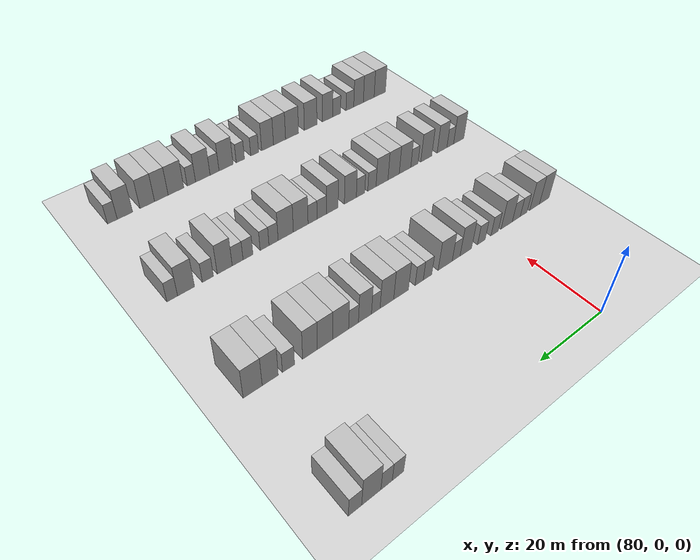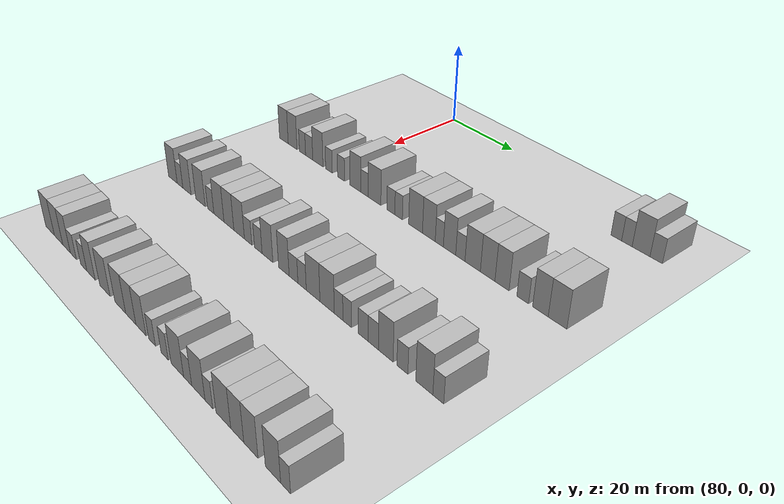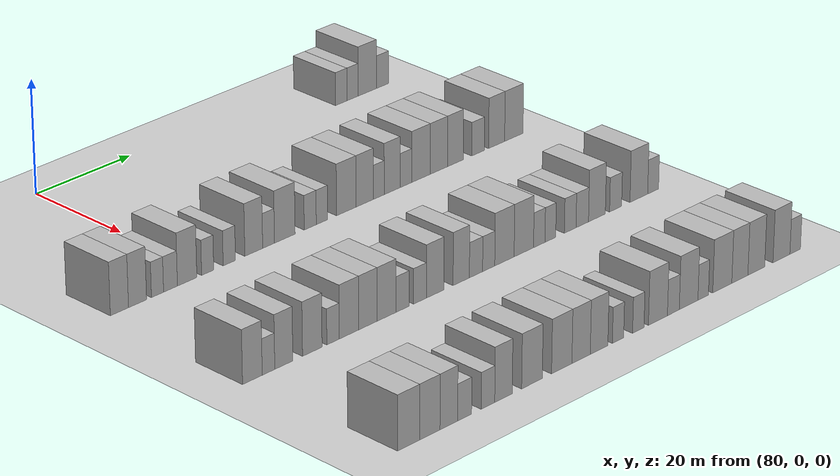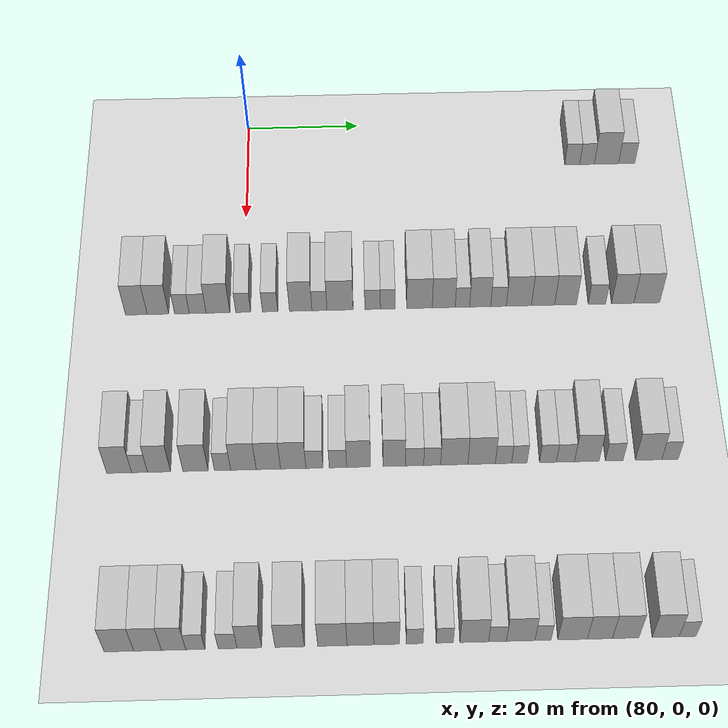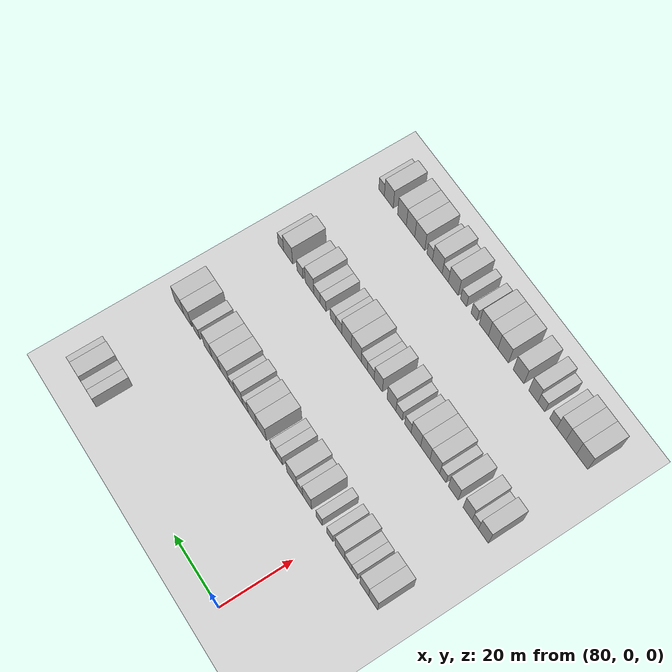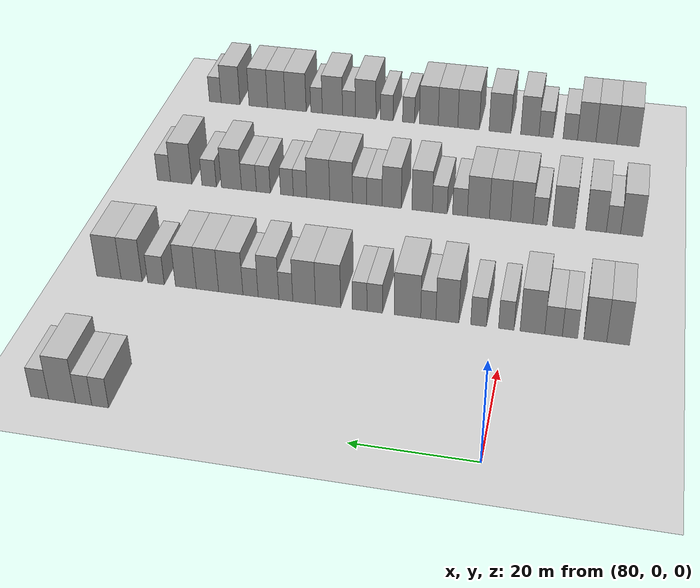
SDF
<sdf version="1.6">
 <world name="default">
  <include>
   <name>ground_plane_2</name>
   <uri>model://HANNAS_ground_plane</uri>
   <pose>100 0 0  0 0 0</pose>
  </include>
  <model name="building_590">
   <static>1</static>
   <pose>85.0000 58.6943 0 0.000000 0.000000 0.000000</pose>
   <link name="link">
    <pose>0 0 3.00 0 0 0</pose>
    <collision name="collision"><geometry><box><size>10.0000 2.7218 6.0000</size></box></geometry></collision>
    <visual name="visual">
     <cast_shadows>0</cast_shadows>
     <geometry><box><size>10.0000 2.7218 6.0000</size></box></geometry>
     <material>
      <script>
       <uri>model://HANNAS_wall/materials/scripts</uri>
       <uri>model://HANNAS_wall/materials/textures</uri>
       <name>vrc/HANNAS_wall</name>
      </script>
     </material>
    </visual>
   </link>
  </model>
  <model name="building_591">
   <static>1</static>
   <pose>85.0000 61.3782 0 0.000000 0.000000 0.000000</pose>
   <link name="link">
    <pose>0 0 3.00 0 0 0</pose>
    <collision name="collision"><geometry><box><size>10.0000 2.6460 6.0000</size></box></geometry></collision>
    <visual name="visual">
     <cast_shadows>0</cast_shadows>
     <geometry><box><size>10.0000 2.6460 6.0000</size></box></geometry>
     <material>
      <script>
       <uri>model://HANNAS_wall/materials/scripts</uri>
       <uri>model://HANNAS_wall/materials/textures</uri>
       <name>vrc/HANNAS_wall</name>
      </script>
     </material>
    </visual>
   </link>
  </model>
  <model name="building_592">
   <static>1</static>
   <pose>85.0000 64.8887 0 0.000000 0.000000 0.000000</pose>
   <link name="link">
    <pose>0 0 4.50 0 0 0</pose>
    <collision name="collision"><geometry><box><size>10.0000 4.3751 9.0000</size></box></geometry></collision>
    <visual name="visual">
     <cast_shadows>0</cast_shadows>
     <geometry><box><size>10.0000 4.3751 9.0000</size></box></geometry>
     <material>
      <script>
       <uri>model://HANNAS_wall/materials/scripts</uri>
       <uri>model://HANNAS_wall/materials/textures</uri>
       <name>vrc/HANNAS_wall</name>
      </script>
     </material>
    </visual>
   </link>
  </model>
  <model name="building_593">
   <static>1</static>
   <pose>85.0000 68.5587 0 0.000000 0.000000 0.000000</pose>
   <link name="link">
    <pose>0 0 3.00 0 0 0</pose>
    <collision name="collision"><geometry><box><size>10.0000 2.9649 6.0000</size></box></geometry></collision>
    <visual name="visual">
     <cast_shadows>0</cast_shadows>
     <geometry><box><size>10.0000 2.9649 6.0000</size></box></geometry>
     <material>
      <script>
       <uri>model://HANNAS_wall/materials/scripts</uri>
       <uri>model://HANNAS_wall/materials/textures</uri>
       <name>vrc/HANNAS_wall</name>
      </script>
     </material>
    </visual>
   </link>
  </model>
  <model name="building_803">
   <static>1</static>
   <pose>115.0000 -18.3068 0 0.000000 0.000000 0.000000</pose>
   <link name="link">
    <pose>0 0 4.50 0 0 0</pose>
    <collision name="collision"><geometry><box><size>10.0000 3.6775 9.0000</size></box></geometry></collision>
    <visual name="visual">
     <cast_shadows>0</cast_shadows>
     <geometry><box><size>10.0000 3.6775 9.0000</size></box></geometry>
     <material>
      <script>
       <uri>model://HANNAS_wall/materials/scripts</uri>
       <uri>model://HANNAS_wall/materials/textures</uri>
       <name>vrc/HANNAS_wall</name>
      </script>
     </material>
    </visual>
   </link>
  </model>
  <model name="building_804">
   <static>1</static>
   <pose>115.0000 -14.6297 0 0.000000 0.000000 0.000000</pose>
   <link name="link">
    <pose>0 0 4.50 0 0 0</pose>
    <collision name="collision"><geometry><box><size>10.0000 3.6768 9.0000</size></box></geometry></collision>
    <visual name="visual">
     <cast_shadows>0</cast_shadows>
     <geometry><box><size>10.0000 3.6768 9.0000</size></box></geometry>
     <material>
      <script>
       <uri>model://HANNAS_wall/materials/scripts</uri>
       <uri>model://HANNAS_wall/materials/textures</uri>
       <name>vrc/HANNAS_wall</name>
      </script>
     </material>
    </visual>
   </link>
  </model>
  <model name="building_805">
   <static>1</static>
   <pose>115.0000 -10.5433 0 0.000000 0.000000 0.000000</pose>
   <link name="link">
    <pose>0 0 3.00 0 0 0</pose>
    <collision name="collision"><geometry><box><size>10.0000 2.4961 6.0000</size></box></geometry></collision>
    <visual name="visual">
     <cast_shadows>0</cast_shadows>
     <geometry><box><size>10.0000 2.4961 6.0000</size></box></geometry>
     <material>
      <script>
       <uri>model://HANNAS_wall/materials/scripts</uri>
       <uri>model://HANNAS_wall/materials/textures</uri>
       <name>vrc/HANNAS_wall</name>
      </script>
     </material>
    </visual>
   </link>
  </model>
  <model name="building_806">
   <static>1</static>
   <pose>115.0000 -7.8630 0 0.000000 0.000000 0.000000</pose>
   <link name="link">
    <pose>0 0 3.00 0 0 0</pose>
    <collision name="collision"><geometry><box><size>10.0000 2.8645 6.0000</size></box></geometry></collision>
    <visual name="visual">
     <cast_shadows>0</cast_shadows>
     <geometry><box><size>10.0000 2.8645 6.0000</size></box></geometry>
     <material>
      <script>
       <uri>model://HANNAS_wall/materials/scripts</uri>
       <uri>model://HANNAS_wall/materials/textures</uri>
       <name>vrc/HANNAS_wall</name>
      </script>
     </material>
    </visual>
   </link>
  </model>
  <model name="building_807">
   <static>1</static>
   <pose>115.0000 -4.4111 0 0.000000 0.000000 0.000000</pose>
   <link name="link">
    <pose>0 0 4.50 0 0 0</pose>
    <collision name="collision"><geometry><box><size>10.0000 4.0393 9.0000</size></box></geometry></collision>
    <visual name="visual">
     <cast_shadows>0</cast_shadows>
     <geometry><box><size>10.0000 4.0393 9.0000</size></box></geometry>
     <material>
      <script>
       <uri>model://HANNAS_wall/materials/scripts</uri>
       <uri>model://HANNAS_wall/materials/textures</uri>
       <name>vrc/HANNAS_wall</name>
      </script>
     </material>
    </visual>
   </link>
  </model>
  <model name="building_808">
   <static>1</static>
   <pose>115.0000 -0.1194 0 0.000000 0.000000 0.000000</pose>
   <link name="link">
    <pose>0 0 3.00 0 0 0</pose>
    <collision name="collision"><geometry><box><size>10.0000 2.5441 6.0000</size></box></geometry></collision>
    <visual name="visual">
     <cast_shadows>0</cast_shadows>
     <geometry><box><size>10.0000 2.5441 6.0000</size></box></geometry>
     <material>
      <script>
       <uri>model://HANNAS_wall/materials/scripts</uri>
       <uri>model://HANNAS_wall/materials/textures</uri>
       <name>vrc/HANNAS_wall</name>
      </script>
     </material>
    </visual>
   </link>
  </model>
  <model name="building_809">
   <static>1</static>
   <pose>115.0000 4.4580 0 0.000000 0.000000 0.000000</pose>
   <link name="link">
    <pose>0 0 3.00 0 0 0</pose>
    <collision name="collision"><geometry><box><size>10.0000 2.6108 6.0000</size></box></geometry></collision>
    <visual name="visual">
     <cast_shadows>0</cast_shadows>
     <geometry><box><size>10.0000 2.6108 6.0000</size></box></geometry>
     <material>
      <script>
       <uri>model://HANNAS_wall/materials/scripts</uri>
       <uri>model://HANNAS_wall/materials/textures</uri>
       <name>vrc/HANNAS_wall</name>
      </script>
     </material>
    </visual>
   </link>
  </model>
  <model name="building_810">
   <static>1</static>
   <pose>115.0000 9.6715 0 0.000000 0.000000 0.000000</pose>
   <link name="link">
    <pose>0 0 4.50 0 0 0</pose>
    <collision name="collision"><geometry><box><size>10.0000 3.8161 9.0000</size></box></geometry></collision>
    <visual name="visual">
     <cast_shadows>0</cast_shadows>
     <geometry><box><size>10.0000 3.8161 9.0000</size></box></geometry>
     <material>
      <script>
       <uri>model://HANNAS_wall/materials/scripts</uri>
       <uri>model://HANNAS_wall/materials/textures</uri>
       <name>vrc/HANNAS_wall</name>
      </script>
     </material>
    </visual>
   </link>
  </model>
  <model name="building_811">
   <static>1</static>
   <pose>115.0000 12.8605 0 0.000000 0.000000 0.000000</pose>
   <link name="link">
    <pose>0 0 3.00 0 0 0</pose>
    <collision name="collision"><geometry><box><size>10.0000 2.5621 6.0000</size></box></geometry></collision>
    <visual name="visual">
     <cast_shadows>0</cast_shadows>
     <geometry><box><size>10.0000 2.5621 6.0000</size></box></geometry>
     <material>
      <script>
       <uri>model://HANNAS_wall/materials/scripts</uri>
       <uri>model://HANNAS_wall/materials/textures</uri>
       <name>vrc/HANNAS_wall</name>
      </script>
     </material>
    </visual>
   </link>
  </model>
  <model name="building_812">
   <static>1</static>
   <pose>115.0000 16.3796 0 0.000000 0.000000 0.000000</pose>
   <link name="link">
    <pose>0 0 4.50 0 0 0</pose>
    <collision name="collision"><geometry><box><size>10.0000 4.4760 9.0000</size></box></geometry></collision>
    <visual name="visual">
     <cast_shadows>0</cast_shadows>
     <geometry><box><size>10.0000 4.4760 9.0000</size></box></geometry>
     <material>
      <script>
       <uri>model://HANNAS_wall/materials/scripts</uri>
       <uri>model://HANNAS_wall/materials/textures</uri>
       <name>vrc/HANNAS_wall</name>
      </script>
     </material>
    </visual>
   </link>
  </model>
  <model name="building_813">
   <static>1</static>
   <pose>115.0000 21.9406 0 0.000000 0.000000 0.000000</pose>
   <link name="link">
    <pose>0 0 3.00 0 0 0</pose>
    <collision name="collision"><geometry><box><size>10.0000 2.6461 6.0000</size></box></geometry></collision>
    <visual name="visual">
     <cast_shadows>0</cast_shadows>
     <geometry><box><size>10.0000 2.6461 6.0000</size></box></geometry>
     <material>
      <script>
       <uri>model://HANNAS_wall/materials/scripts</uri>
       <uri>model://HANNAS_wall/materials/textures</uri>
       <name>vrc/HANNAS_wall</name>
      </script>
     </material>
    </visual>
   </link>
  </model>
  <model name="building_814">
   <static>1</static>
   <pose>115.0000 24.5147 0 0.000000 0.000000 0.000000</pose>
   <link name="link">
    <pose>0 0 3.00 0 0 0</pose>
    <collision name="collision"><geometry><box><size>10.0000 2.5020 6.0000</size></box></geometry></collision>
    <visual name="visual">
     <cast_shadows>0</cast_shadows>
     <geometry><box><size>10.0000 2.5020 6.0000</size></box></geometry>
     <material>
      <script>
       <uri>model://HANNAS_wall/materials/scripts</uri>
       <uri>model://HANNAS_wall/materials/textures</uri>
       <name>vrc/HANNAS_wall</name>
      </script>
     </material>
    </visual>
   </link>
  </model>
  <model name="building_815">
   <static>1</static>
   <pose>115.0000 29.9455 0 0.000000 0.000000 0.000000</pose>
   <link name="link">
    <pose>0 0 4.50 0 0 0</pose>
    <collision name="collision"><geometry><box><size>10.0000 4.3598 9.0000</size></box></geometry></collision>
    <visual name="visual">
     <cast_shadows>0</cast_shadows>
     <geometry><box><size>10.0000 4.3598 9.0000</size></box></geometry>
     <material>
      <script>
       <uri>model://HANNAS_wall/materials/scripts</uri>
       <uri>model://HANNAS_wall/materials/textures</uri>
       <name>vrc/HANNAS_wall</name>
      </script>
     </material>
    </visual>
   </link>
  </model>
  <model name="building_816">
   <static>1</static>
   <pose>115.0000 34.0891 0 0.000000 0.000000 0.000000</pose>
   <link name="link">
    <pose>0 0 4.50 0 0 0</pose>
    <collision name="collision"><geometry><box><size>10.0000 3.9274 9.0000</size></box></geometry></collision>
    <visual name="visual">
     <cast_shadows>0</cast_shadows>
     <geometry><box><size>10.0000 3.9274 9.0000</size></box></geometry>
     <material>
      <script>
       <uri>model://HANNAS_wall/materials/scripts</uri>
       <uri>model://HANNAS_wall/materials/textures</uri>
       <name>vrc/HANNAS_wall</name>
      </script>
     </material>
    </visual>
   </link>
  </model>
  <model name="building_817">
   <static>1</static>
   <pose>115.0000 37.2723 0 0.000000 0.000000 0.000000</pose>
   <link name="link">
    <pose>0 0 3.00 0 0 0</pose>
    <collision name="collision"><geometry><box><size>10.0000 2.4389 6.0000</size></box></geometry></collision>
    <visual name="visual">
     <cast_shadows>0</cast_shadows>
     <geometry><box><size>10.0000 2.4389 6.0000</size></box></geometry>
     <material>
      <script>
       <uri>model://HANNAS_wall/materials/scripts</uri>
       <uri>model://HANNAS_wall/materials/textures</uri>
       <name>vrc/HANNAS_wall</name>
      </script>
     </material>
    </visual>
   </link>
  </model>
  <model name="building_818">
   <static>1</static>
   <pose>115.0000 40.3059 0 0.000000 0.000000 0.000000</pose>
   <link name="link">
    <pose>0 0 4.50 0 0 0</pose>
    <collision name="collision"><geometry><box><size>10.0000 3.6284 9.0000</size></box></geometry></collision>
    <visual name="visual">
     <cast_shadows>0</cast_shadows>
     <geometry><box><size>10.0000 3.6284 9.0000</size></box></geometry>
     <material>
      <script>
       <uri>model://HANNAS_wall/materials/scripts</uri>
       <uri>model://HANNAS_wall/materials/textures</uri>
       <name>vrc/HANNAS_wall</name>
      </script>
     </material>
    </visual>
   </link>
  </model>
  <model name="building_819">
   <static>1</static>
   <pose>115.0000 43.4544 0 0.000000 0.000000 0.000000</pose>
   <link name="link">
    <pose>0 0 3.00 0 0 0</pose>
    <collision name="collision"><geometry><box><size>10.0000 2.6686 6.0000</size></box></geometry></collision>
    <visual name="visual">
     <cast_shadows>0</cast_shadows>
     <geometry><box><size>10.0000 2.6686 6.0000</size></box></geometry>
     <material>
      <script>
       <uri>model://HANNAS_wall/materials/scripts</uri>
       <uri>model://HANNAS_wall/materials/textures</uri>
       <name>vrc/HANNAS_wall</name>
      </script>
     </material>
    </visual>
   </link>
  </model>
  <model name="building_820">
   <static>1</static>
   <pose>115.0000 46.9397 0 0.000000 0.000000 0.000000</pose>
   <link name="link">
    <pose>0 0 4.50 0 0 0</pose>
    <collision name="collision"><geometry><box><size>10.0000 4.3019 9.0000</size></box></geometry></collision>
    <visual name="visual">
     <cast_shadows>0</cast_shadows>
     <geometry><box><size>10.0000 4.3019 9.0000</size></box></geometry>
     <material>
      <script>
       <uri>model://HANNAS_wall/materials/scripts</uri>
       <uri>model://HANNAS_wall/materials/textures</uri>
       <name>vrc/HANNAS_wall</name>
      </script>
     </material>
    </visual>
   </link>
  </model>
  <model name="building_821">
   <static>1</static>
   <pose>115.0000 51.0783 0 0.000000 0.000000 0.000000</pose>
   <link name="link">
    <pose>0 0 4.50 0 0 0</pose>
    <collision name="collision"><geometry><box><size>10.0000 3.9753 9.0000</size></box></geometry></collision>
    <visual name="visual">
     <cast_shadows>0</cast_shadows>
     <geometry><box><size>10.0000 3.9753 9.0000</size></box></geometry>
     <material>
      <script>
       <uri>model://HANNAS_wall/materials/scripts</uri>
       <uri>model://HANNAS_wall/materials/textures</uri>
       <name>vrc/HANNAS_wall</name>
      </script>
     </material>
    </visual>
   </link>
  </model>
  <model name="building_822">
   <static>1</static>
   <pose>115.0000 54.9348 0 0.000000 0.000000 0.000000</pose>
   <link name="link">
    <pose>0 0 4.50 0 0 0</pose>
    <collision name="collision"><geometry><box><size>10.0000 3.7379 9.0000</size></box></geometry></collision>
    <visual name="visual">
     <cast_shadows>0</cast_shadows>
     <geometry><box><size>10.0000 3.7379 9.0000</size></box></geometry>
     <material>
      <script>
       <uri>model://HANNAS_wall/materials/scripts</uri>
       <uri>model://HANNAS_wall/materials/textures</uri>
       <name>vrc/HANNAS_wall</name>
      </script>
     </material>
    </visual>
   </link>
  </model>
  <model name="building_823">
   <static>1</static>
   <pose>115.0000 60.3033 0 0.000000 0.000000 0.000000</pose>
   <link name="link">
    <pose>0 0 3.00 0 0 0</pose>
    <collision name="collision"><geometry><box><size>10.0000 2.9991 6.0000</size></box></geometry></collision>
    <visual name="visual">
     <cast_shadows>0</cast_shadows>
     <geometry><box><size>10.0000 2.9991 6.0000</size></box></geometry>
     <material>
      <script>
       <uri>model://HANNAS_wall/materials/scripts</uri>
       <uri>model://HANNAS_wall/materials/textures</uri>
       <name>vrc/HANNAS_wall</name>
      </script>
     </material>
    </visual>
   </link>
  </model>
  <model name="building_824">
   <static>1</static>
   <pose>115.0000 64.7175 0 0.000000 0.000000 0.000000</pose>
   <link name="link">
    <pose>0 0 4.50 0 0 0</pose>
    <collision name="collision"><geometry><box><size>10.0000 3.8294 9.0000</size></box></geometry></collision>
    <visual name="visual">
     <cast_shadows>0</cast_shadows>
     <geometry><box><size>10.0000 3.8294 9.0000</size></box></geometry>
     <material>
      <script>
       <uri>model://HANNAS_wall/materials/scripts</uri>
       <uri>model://HANNAS_wall/materials/textures</uri>
       <name>vrc/HANNAS_wall</name>
      </script>
     </material>
    </visual>
   </link>
  </model>
  <model name="building_825">
   <static>1</static>
   <pose>115.0000 68.8520 0 0.000000 0.000000 0.000000</pose>
   <link name="link">
    <pose>0 0 4.50 0 0 0</pose>
    <collision name="collision"><geometry><box><size>10.0000 4.4395 9.0000</size></box></geometry></collision>
    <visual name="visual">
     <cast_shadows>0</cast_shadows>
     <geometry><box><size>10.0000 4.4395 9.0000</size></box></geometry>
     <material>
      <script>
       <uri>model://HANNAS_wall/materials/scripts</uri>
       <uri>model://HANNAS_wall/materials/textures</uri>
       <name>vrc/HANNAS_wall</name>
      </script>
     </material>
    </visual>
   </link>
  </model>
  <model name="building_1025">
   <static>1</static>
   <pose>145.0000 -19.3478 0 0.000000 0.000000 0.000000</pose>
   <link name="link">
    <pose>0 0 4.50 0 0 0</pose>
    <collision name="collision"><geometry><box><size>10.0000 3.9647 9.0000</size></box></geometry></collision>
    <visual name="visual">
     <cast_shadows>0</cast_shadows>
     <geometry><box><size>10.0000 3.9647 9.0000</size></box></geometry>
     <material>
      <script>
       <uri>model://HANNAS_wall/materials/scripts</uri>
       <uri>model://HANNAS_wall/materials/textures</uri>
       <name>vrc/HANNAS_wall</name>
      </script>
     </material>
    </visual>
   </link>
  </model>
  <model name="building_1026">
   <static>1</static>
   <pose>145.0000 -16.0888 0 0.000000 0.000000 0.000000</pose>
   <link name="link">
    <pose>0 0 3.00 0 0 0</pose>
    <collision name="collision"><geometry><box><size>10.0000 2.5534 6.0000</size></box></geometry></collision>
    <visual name="visual">
     <cast_shadows>0</cast_shadows>
     <geometry><box><size>10.0000 2.5534 6.0000</size></box></geometry>
     <material>
      <script>
       <uri>model://HANNAS_wall/materials/scripts</uri>
       <uri>model://HANNAS_wall/materials/textures</uri>
       <name>vrc/HANNAS_wall</name>
      </script>
     </material>
    </visual>
   </link>
  </model>
  <model name="building_1027">
   <static>1</static>
   <pose>145.0000 -12.9695 0 0.000000 0.000000 0.000000</pose>
   <link name="link">
    <pose>0 0 4.50 0 0 0</pose>
    <collision name="collision"><geometry><box><size>10.0000 3.6851 9.0000</size></box></geometry></collision>
    <visual name="visual">
     <cast_shadows>0</cast_shadows>
     <geometry><box><size>10.0000 3.6851 9.0000</size></box></geometry>
     <material>
      <script>
       <uri>model://HANNAS_wall/materials/scripts</uri>
       <uri>model://HANNAS_wall/materials/textures</uri>
       <name>vrc/HANNAS_wall</name>
      </script>
     </material>
    </visual>
   </link>
  </model>
  <model name="building_1028">
   <static>1</static>
   <pose>145.0000 -7.1081 0 0.000000 0.000000 0.000000</pose>
   <link name="link">
    <pose>0 0 4.50 0 0 0</pose>
    <collision name="collision"><geometry><box><size>10.0000 4.0378 9.0000</size></box></geometry></collision>
    <visual name="visual">
     <cast_shadows>0</cast_shadows>
     <geometry><box><size>10.0000 4.0378 9.0000</size></box></geometry>
     <material>
      <script>
       <uri>model://HANNAS_wall/materials/scripts</uri>
       <uri>model://HANNAS_wall/materials/textures</uri>
       <name>vrc/HANNAS_wall</name>
      </script>
     </material>
    </visual>
   </link>
  </model>
  <model name="building_1029">
   <static>1</static>
   <pose>145.0000 -2.7846 0 0.000000 0.000000 0.000000</pose>
   <link name="link">
    <pose>0 0 3.00 0 0 0</pose>
    <collision name="collision"><geometry><box><size>10.0000 2.6092 6.0000</size></box></geometry></collision>
    <visual name="visual">
     <cast_shadows>0</cast_shadows>
     <geometry><box><size>10.0000 2.6092 6.0000</size></box></geometry>
     <material>
      <script>
       <uri>model://HANNAS_wall/materials/scripts</uri>
       <uri>model://HANNAS_wall/materials/textures</uri>
       <name>vrc/HANNAS_wall</name>
      </script>
     </material>
    </visual>
   </link>
  </model>
  <model name="building_1030">
   <static>1</static>
   <pose>145.0000 0.5611 0 0.000000 0.000000 0.000000</pose>
   <link name="link">
    <pose>0 0 4.50 0 0 0</pose>
    <collision name="collision"><geometry><box><size>10.0000 4.0822 9.0000</size></box></geometry></collision>
    <visual name="visual">
     <cast_shadows>0</cast_shadows>
     <geometry><box><size>10.0000 4.0822 9.0000</size></box></geometry>
     <material>
      <script>
       <uri>model://HANNAS_wall/materials/scripts</uri>
       <uri>model://HANNAS_wall/materials/textures</uri>
       <name>vrc/HANNAS_wall</name>
      </script>
     </material>
    </visual>
   </link>
  </model>
  <model name="building_1031">
   <static>1</static>
   <pose>145.0000 4.5567 0 0.000000 0.000000 0.000000</pose>
   <link name="link">
    <pose>0 0 4.50 0 0 0</pose>
    <collision name="collision"><geometry><box><size>10.0000 3.9092 9.0000</size></box></geometry></collision>
    <visual name="visual">
     <cast_shadows>0</cast_shadows>
     <geometry><box><size>10.0000 3.9092 9.0000</size></box></geometry>
     <material>
      <script>
       <uri>model://HANNAS_wall/materials/scripts</uri>
       <uri>model://HANNAS_wall/materials/textures</uri>
       <name>vrc/HANNAS_wall</name>
      </script>
     </material>
    </visual>
   </link>
  </model>
  <model name="building_1032">
   <static>1</static>
   <pose>145.0000 8.5466 0 0.000000 0.000000 0.000000</pose>
   <link name="link">
    <pose>0 0 4.50 0 0 0</pose>
    <collision name="collision"><geometry><box><size>10.0000 4.0705 9.0000</size></box></geometry></collision>
    <visual name="visual">
     <cast_shadows>0</cast_shadows>
     <geometry><box><size>10.0000 4.0705 9.0000</size></box></geometry>
     <material>
      <script>
       <uri>model://HANNAS_wall/materials/scripts</uri>
       <uri>model://HANNAS_wall/materials/textures</uri>
       <name>vrc/HANNAS_wall</name>
      </script>
     </material>
    </visual>
   </link>
  </model>
  <model name="building_1033">
   <static>1</static>
   <pose>145.0000 11.9644 0 0.000000 0.000000 0.000000</pose>
   <link name="link">
    <pose>0 0 3.00 0 0 0</pose>
    <collision name="collision"><geometry><box><size>10.0000 2.7652 6.0000</size></box></geometry></collision>
    <visual name="visual">
     <cast_shadows>0</cast_shadows>
     <geometry><box><size>10.0000 2.7652 6.0000</size></box></geometry>
     <material>
      <script>
       <uri>model://HANNAS_wall/materials/scripts</uri>
       <uri>model://HANNAS_wall/materials/textures</uri>
       <name>vrc/HANNAS_wall</name>
      </script>
     </material>
    </visual>
   </link>
  </model>
  <model name="building_1034">
   <static>1</static>
   <pose>145.0000 15.7348 0 0.000000 0.000000 0.000000</pose>
   <link name="link">
    <pose>0 0 3.00 0 0 0</pose>
    <collision name="collision"><geometry><box><size>10.0000 2.7756 6.0000</size></box></geometry></collision>
    <visual name="visual">
     <cast_shadows>0</cast_shadows>
     <geometry><box><size>10.0000 2.7756 6.0000</size></box></geometry>
     <material>
      <script>
       <uri>model://HANNAS_wall/materials/scripts</uri>
       <uri>model://HANNAS_wall/materials/textures</uri>
       <name>vrc/HANNAS_wall</name>
      </script>
     </material>
    </visual>
   </link>
  </model>
  <model name="building_1035">
   <static>1</static>
   <pose>145.0000 19.0501 0 0.000000 0.000000 0.000000</pose>
   <link name="link">
    <pose>0 0 4.50 0 0 0</pose>
    <collision name="collision"><geometry><box><size>10.0000 3.8550 9.0000</size></box></geometry></collision>
    <visual name="visual">
     <cast_shadows>0</cast_shadows>
     <geometry><box><size>10.0000 3.8550 9.0000</size></box></geometry>
     <material>
      <script>
       <uri>model://HANNAS_wall/materials/scripts</uri>
       <uri>model://HANNAS_wall/materials/textures</uri>
       <name>vrc/HANNAS_wall</name>
      </script>
     </material>
    </visual>
   </link>
  </model>
  <model name="building_1036">
   <static>1</static>
   <pose>145.0000 24.7824 0 0.000000 0.000000 0.000000</pose>
   <link name="link">
    <pose>0 0 4.50 0 0 0</pose>
    <collision name="collision"><geometry><box><size>10.0000 3.6098 9.0000</size></box></geometry></collision>
    <visual name="visual">
     <cast_shadows>0</cast_shadows>
     <geometry><box><size>10.0000 3.6098 9.0000</size></box></geometry>
     <material>
      <script>
       <uri>model://HANNAS_wall/materials/scripts</uri>
       <uri>model://HANNAS_wall/materials/textures</uri>
       <name>vrc/HANNAS_wall</name>
      </script>
     </material>
    </visual>
   </link>
  </model>
  <model name="building_1037">
   <static>1</static>
   <pose>145.0000 28.0609 0 0.000000 0.000000 0.000000</pose>
   <link name="link">
    <pose>0 0 3.00 0 0 0</pose>
    <collision name="collision"><geometry><box><size>10.0000 2.9472 6.0000</size></box></geometry></collision>
    <visual name="visual">
     <cast_shadows>0</cast_shadows>
     <geometry><box><size>10.0000 2.9472 6.0000</size></box></geometry>
     <material>
      <script>
       <uri>model://HANNAS_wall/materials/scripts</uri>
       <uri>model://HANNAS_wall/materials/textures</uri>
       <name>vrc/HANNAS_wall</name>
      </script>
     </material>
    </visual>
   </link>
  </model>
  <model name="building_1038">
   <static>1</static>
   <pose>145.0000 30.8993 0 0.000000 0.000000 0.000000</pose>
   <link name="link">
    <pose>0 0 3.00 0 0 0</pose>
    <collision name="collision"><geometry><box><size>10.0000 2.7296 6.0000</size></box></geometry></collision>
    <visual name="visual">
     <cast_shadows>0</cast_shadows>
     <geometry><box><size>10.0000 2.7296 6.0000</size></box></geometry>
     <material>
      <script>
       <uri>model://HANNAS_wall/materials/scripts</uri>
       <uri>model://HANNAS_wall/materials/textures</uri>
       <name>vrc/HANNAS_wall</name>
      </script>
     </material>
    </visual>
   </link>
  </model>
  <model name="building_1039">
   <static>1</static>
   <pose>145.0000 34.4526 0 0.000000 0.000000 0.000000</pose>
   <link name="link">
    <pose>0 0 4.50 0 0 0</pose>
    <collision name="collision"><geometry><box><size>10.0000 4.3770 9.0000</size></box></geometry></collision>
    <visual name="visual">
     <cast_shadows>0</cast_shadows>
     <geometry><box><size>10.0000 4.3770 9.0000</size></box></geometry>
     <material>
      <script>
       <uri>model://HANNAS_wall/materials/scripts</uri>
       <uri>model://HANNAS_wall/materials/textures</uri>
       <name>vrc/HANNAS_wall</name>
      </script>
     </material>
    </visual>
   </link>
  </model>
  <model name="building_1040">
   <static>1</static>
   <pose>145.0000 38.8561 0 0.000000 0.000000 0.000000</pose>
   <link name="link">
    <pose>0 0 4.50 0 0 0</pose>
    <collision name="collision"><geometry><box><size>10.0000 4.4301 9.0000</size></box></geometry></collision>
    <visual name="visual">
     <cast_shadows>0</cast_shadows>
     <geometry><box><size>10.0000 4.4301 9.0000</size></box></geometry>
     <material>
      <script>
       <uri>model://HANNAS_wall/materials/scripts</uri>
       <uri>model://HANNAS_wall/materials/textures</uri>
       <name>vrc/HANNAS_wall</name>
      </script>
     </material>
    </visual>
   </link>
  </model>
  <model name="building_1041">
   <static>1</static>
   <pose>145.0000 42.3800 0 0.000000 0.000000 0.000000</pose>
   <link name="link">
    <pose>0 0 3.00 0 0 0</pose>
    <collision name="collision"><geometry><box><size>10.0000 2.6177 6.0000</size></box></geometry></collision>
    <visual name="visual">
     <cast_shadows>0</cast_shadows>
     <geometry><box><size>10.0000 2.6177 6.0000</size></box></geometry>
     <material>
      <script>
       <uri>model://HANNAS_wall/materials/scripts</uri>
       <uri>model://HANNAS_wall/materials/textures</uri>
       <name>vrc/HANNAS_wall</name>
      </script>
     </material>
    </visual>
   </link>
  </model>
  <model name="building_1042">
   <static>1</static>
   <pose>145.0000 44.9347 0 0.000000 0.000000 0.000000</pose>
   <link name="link">
    <pose>0 0 3.00 0 0 0</pose>
    <collision name="collision"><geometry><box><size>10.0000 2.4917 6.0000</size></box></geometry></collision>
    <visual name="visual">
     <cast_shadows>0</cast_shadows>
     <geometry><box><size>10.0000 2.4917 6.0000</size></box></geometry>
     <material>
      <script>
       <uri>model://HANNAS_wall/materials/scripts</uri>
       <uri>model://HANNAS_wall/materials/textures</uri>
       <name>vrc/HANNAS_wall</name>
      </script>
     </material>
    </visual>
   </link>
  </model>
  <model name="building_1043">
   <static>1</static>
   <pose>145.0000 49.5407 0 0.000000 0.000000 0.000000</pose>
   <link name="link">
    <pose>0 0 3.00 0 0 0</pose>
    <collision name="collision"><geometry><box><size>10.0000 2.7203 6.0000</size></box></geometry></collision>
    <visual name="visual">
     <cast_shadows>0</cast_shadows>
     <geometry><box><size>10.0000 2.7203 6.0000</size></box></geometry>
     <material>
      <script>
       <uri>model://HANNAS_wall/materials/scripts</uri>
       <uri>model://HANNAS_wall/materials/textures</uri>
       <name>vrc/HANNAS_wall</name>
      </script>
     </material>
    </visual>
   </link>
  </model>
  <model name="building_1044">
   <static>1</static>
   <pose>145.0000 52.3647 0 0.000000 0.000000 0.000000</pose>
   <link name="link">
    <pose>0 0 3.00 0 0 0</pose>
    <collision name="collision"><geometry><box><size>10.0000 2.9277 6.0000</size></box></geometry></collision>
    <visual name="visual">
     <cast_shadows>0</cast_shadows>
     <geometry><box><size>10.0000 2.9277 6.0000</size></box></geometry>
     <material>
      <script>
       <uri>model://HANNAS_wall/materials/scripts</uri>
       <uri>model://HANNAS_wall/materials/textures</uri>
       <name>vrc/HANNAS_wall</name>
      </script>
     </material>
    </visual>
   </link>
  </model>
  <model name="building_1045">
   <static>1</static>
   <pose>145.0000 55.8167 0 0.000000 0.000000 0.000000</pose>
   <link name="link">
    <pose>0 0 4.50 0 0 0</pose>
    <collision name="collision"><geometry><box><size>10.0000 3.9764 9.0000</size></box></geometry></collision>
    <visual name="visual">
     <cast_shadows>0</cast_shadows>
     <geometry><box><size>10.0000 3.9764 9.0000</size></box></geometry>
     <material>
      <script>
       <uri>model://HANNAS_wall/materials/scripts</uri>
       <uri>model://HANNAS_wall/materials/textures</uri>
       <name>vrc/HANNAS_wall</name>
      </script>
     </material>
    </visual>
   </link>
  </model>
  <model name="building_1046">
   <static>1</static>
   <pose>145.0000 60.2393 0 0.000000 0.000000 0.000000</pose>
   <link name="link">
    <pose>0 0 3.00 0 0 0</pose>
    <collision name="collision"><geometry><box><size>10.0000 2.8687 6.0000</size></box></geometry></collision>
    <visual name="visual">
     <cast_shadows>0</cast_shadows>
     <geometry><box><size>10.0000 2.8687 6.0000</size></box></geometry>
     <material>
      <script>
       <uri>model://HANNAS_wall/materials/scripts</uri>
       <uri>model://HANNAS_wall/materials/textures</uri>
       <name>vrc/HANNAS_wall</name>
      </script>
     </material>
    </visual>
   </link>
  </model>
  <model name="building_1047">
   <static>1</static>
   <pose>145.0000 65.8057 0 0.000000 0.000000 0.000000</pose>
   <link name="link">
    <pose>0 0 4.50 0 0 0</pose>
    <collision name="collision"><geometry><box><size>10.0000 4.2642 9.0000</size></box></geometry></collision>
    <visual name="visual">
     <cast_shadows>0</cast_shadows>
     <geometry><box><size>10.0000 4.2642 9.0000</size></box></geometry>
     <material>
      <script>
       <uri>model://HANNAS_wall/materials/scripts</uri>
       <uri>model://HANNAS_wall/materials/textures</uri>
       <name>vrc/HANNAS_wall</name>
      </script>
     </material>
    </visual>
   </link>
  </model>
  <model name="building_1048">
   <static>1</static>
   <pose>145.0000 69.2572 0 0.000000 0.000000 0.000000</pose>
   <link name="link">
    <pose>0 0 3.00 0 0 0</pose>
    <collision name="collision"><geometry><box><size>10.0000 2.6388 6.0000</size></box></geometry></collision>
    <visual name="visual">
     <cast_shadows>0</cast_shadows>
     <geometry><box><size>10.0000 2.6388 6.0000</size></box></geometry>
     <material>
      <script>
       <uri>model://HANNAS_wall/materials/scripts</uri>
       <uri>model://HANNAS_wall/materials/textures</uri>
       <name>vrc/HANNAS_wall</name>
      </script>
     </material>
    </visual>
   </link>
  </model>
  <model name="building_1261">
   <static>1</static>
   <pose>175.0000 -17.5140 0 0.000000 0.000000 0.000000</pose>
   <link name="link">
    <pose>0 0 4.50 0 0 0</pose>
    <collision name="collision"><geometry><box><size>10.0000 4.4377 9.0000</size></box></geometry></collision>
    <visual name="visual">
     <cast_shadows>0</cast_shadows>
     <geometry><box><size>10.0000 4.4377 9.0000</size></box></geometry>
     <material>
      <script>
       <uri>model://HANNAS_wall/materials/scripts</uri>
       <uri>model://HANNAS_wall/materials/textures</uri>
       <name>vrc/HANNAS_wall</name>
      </script>
     </material>
    </visual>
   </link>
  </model>
  <model name="building_1262">
   <static>1</static>
   <pose>175.0000 -13.2130 0 0.000000 0.000000 0.000000</pose>
   <link name="link">
    <pose>0 0 4.50 0 0 0</pose>
    <collision name="collision"><geometry><box><size>10.0000 4.1643 9.0000</size></box></geometry></collision>
    <visual name="visual">
     <cast_shadows>0</cast_shadows>
     <geometry><box><size>10.0000 4.1643 9.0000</size></box></geometry>
     <material>
      <script>
       <uri>model://HANNAS_wall/materials/scripts</uri>
       <uri>model://HANNAS_wall/materials/textures</uri>
       <name>vrc/HANNAS_wall</name>
      </script>
     </material>
    </visual>
   </link>
  </model>
  <model name="building_1263">
   <static>1</static>
   <pose>175.0000 -9.3048 0 0.000000 0.000000 0.000000</pose>
   <link name="link">
    <pose>0 0 4.50 0 0 0</pose>
    <collision name="collision"><geometry><box><size>10.0000 3.6522 9.0000</size></box></geometry></collision>
    <visual name="visual">
     <cast_shadows>0</cast_shadows>
     <geometry><box><size>10.0000 3.6522 9.0000</size></box></geometry>
     <material>
      <script>
       <uri>model://HANNAS_wall/materials/scripts</uri>
       <uri>model://HANNAS_wall/materials/textures</uri>
       <name>vrc/HANNAS_wall</name>
      </script>
     </material>
    </visual>
   </link>
  </model>
  <model name="building_1264">
   <static>1</static>
   <pose>175.0000 -6.0345 0 0.000000 0.000000 0.000000</pose>
   <link name="link">
    <pose>0 0 3.00 0 0 0</pose>
    <collision name="collision"><geometry><box><size>10.0000 2.8883 6.0000</size></box></geometry></collision>
    <visual name="visual">
     <cast_shadows>0</cast_shadows>
     <geometry><box><size>10.0000 2.8883 6.0000</size></box></geometry>
     <material>
      <script>
       <uri>model://HANNAS_wall/materials/scripts</uri>
       <uri>model://HANNAS_wall/materials/textures</uri>
       <name>vrc/HANNAS_wall</name>
      </script>
     </material>
    </visual>
   </link>
  </model>
  <model name="building_1265">
   <static>1</static>
   <pose>175.0000 -1.1650 0 0.000000 0.000000 0.000000</pose>
   <link name="link">
    <pose>0 0 3.00 0 0 0</pose>
    <collision name="collision"><geometry><box><size>10.0000 2.8507 6.0000</size></box></geometry></collision>
    <visual name="visual">
     <cast_shadows>0</cast_shadows>
     <geometry><box><size>10.0000 2.8507 6.0000</size></box></geometry>
     <material>
      <script>
       <uri>model://HANNAS_wall/materials/scripts</uri>
       <uri>model://HANNAS_wall/materials/textures</uri>
       <name>vrc/HANNAS_wall</name>
      </script>
     </material>
    </visual>
   </link>
  </model>
  <model name="building_1266">
   <static>1</static>
   <pose>175.0000 2.1121 0 0.000000 0.000000 0.000000</pose>
   <link name="link">
    <pose>0 0 4.50 0 0 0</pose>
    <collision name="collision"><geometry><box><size>10.0000 3.7033 9.0000</size></box></geometry></collision>
    <visual name="visual">
     <cast_shadows>0</cast_shadows>
     <geometry><box><size>10.0000 3.7033 9.0000</size></box></geometry>
     <material>
      <script>
       <uri>model://HANNAS_wall/materials/scripts</uri>
       <uri>model://HANNAS_wall/materials/textures</uri>
       <name>vrc/HANNAS_wall</name>
      </script>
     </material>
    </visual>
   </link>
  </model>
  <model name="building_1267">
   <static>1</static>
   <pose>175.0000 8.1795 0 0.000000 0.000000 0.000000</pose>
   <link name="link">
    <pose>0 0 4.50 0 0 0</pose>
    <collision name="collision"><geometry><box><size>10.0000 4.4316 9.0000</size></box></geometry></collision>
    <visual name="visual">
     <cast_shadows>0</cast_shadows>
     <geometry><box><size>10.0000 4.4316 9.0000</size></box></geometry>
     <material>
      <script>
       <uri>model://HANNAS_wall/materials/scripts</uri>
       <uri>model://HANNAS_wall/materials/textures</uri>
       <name>vrc/HANNAS_wall</name>
      </script>
     </material>
    </visual>
   </link>
  </model>
  <model name="building_1268">
   <static>1</static>
   <pose>175.0000 14.6071 0 0.000000 0.000000 0.000000</pose>
   <link name="link">
    <pose>0 0 4.50 0 0 0</pose>
    <collision name="collision"><geometry><box><size>10.0000 4.4235 9.0000</size></box></geometry></collision>
    <visual name="visual">
     <cast_shadows>0</cast_shadows>
     <geometry><box><size>10.0000 4.4235 9.0000</size></box></geometry>
     <material>
      <script>
       <uri>model://HANNAS_wall/materials/scripts</uri>
       <uri>model://HANNAS_wall/materials/textures</uri>
       <name>vrc/HANNAS_wall</name>
      </script>
     </material>
    </visual>
   </link>
  </model>
  <model name="building_1269">
   <static>1</static>
   <pose>175.0000 18.8357 0 0.000000 0.000000 0.000000</pose>
   <link name="link">
    <pose>0 0 4.50 0 0 0</pose>
    <collision name="collision"><geometry><box><size>10.0000 4.0337 9.0000</size></box></geometry></collision>
    <visual name="visual">
     <cast_shadows>0</cast_shadows>
     <geometry><box><size>10.0000 4.0337 9.0000</size></box></geometry>
     <material>
      <script>
       <uri>model://HANNAS_wall/materials/scripts</uri>
       <uri>model://HANNAS_wall/materials/textures</uri>
       <name>vrc/HANNAS_wall</name>
      </script>
     </material>
    </visual>
   </link>
  </model>
  <model name="building_1270">
   <static>1</static>
   <pose>175.0000 22.8000 0 0.000000 0.000000 0.000000</pose>
   <link name="link">
    <pose>0 0 4.50 0 0 0</pose>
    <collision name="collision"><geometry><box><size>10.0000 3.8947 9.0000</size></box></geometry></collision>
    <visual name="visual">
     <cast_shadows>0</cast_shadows>
     <geometry><box><size>10.0000 3.8947 9.0000</size></box></geometry>
     <material>
      <script>
       <uri>model://HANNAS_wall/materials/scripts</uri>
       <uri>model://HANNAS_wall/materials/textures</uri>
       <name>vrc/HANNAS_wall</name>
      </script>
     </material>
    </visual>
   </link>
  </model>
  <model name="building_1271">
   <static>1</static>
   <pose>175.0000 27.0084 0 0.000000 0.000000 0.000000</pose>
   <link name="link">
    <pose>0 0 3.00 0 0 0</pose>
    <collision name="collision"><geometry><box><size>10.0000 2.5221 6.0000</size></box></geometry></collision>
    <visual name="visual">
     <cast_shadows>0</cast_shadows>
     <geometry><box><size>10.0000 2.5221 6.0000</size></box></geometry>
     <material>
      <script>
       <uri>model://HANNAS_wall/materials/scripts</uri>
       <uri>model://HANNAS_wall/materials/textures</uri>
       <name>vrc/HANNAS_wall</name>
      </script>
     </material>
    </visual>
   </link>
  </model>
  <model name="building_1272">
   <static>1</static>
   <pose>175.0000 31.5613 0 0.000000 0.000000 0.000000</pose>
   <link name="link">
    <pose>0 0 3.00 0 0 0</pose>
    <collision name="collision"><geometry><box><size>10.0000 2.5837 6.0000</size></box></geometry></collision>
    <visual name="visual">
     <cast_shadows>0</cast_shadows>
     <geometry><box><size>10.0000 2.5837 6.0000</size></box></geometry>
     <material>
      <script>
       <uri>model://HANNAS_wall/materials/scripts</uri>
       <uri>model://HANNAS_wall/materials/textures</uri>
       <name>vrc/HANNAS_wall</name>
      </script>
     </material>
    </visual>
   </link>
  </model>
  <model name="building_1273">
   <static>1</static>
   <pose>175.0000 36.0163 0 0.000000 0.000000 0.000000</pose>
   <link name="link">
    <pose>0 0 4.50 0 0 0</pose>
    <collision name="collision"><geometry><box><size>10.0000 4.3263 9.0000</size></box></geometry></collision>
    <visual name="visual">
     <cast_shadows>0</cast_shadows>
     <geometry><box><size>10.0000 4.3263 9.0000</size></box></geometry>
     <material>
      <script>
       <uri>model://HANNAS_wall/materials/scripts</uri>
       <uri>model://HANNAS_wall/materials/textures</uri>
       <name>vrc/HANNAS_wall</name>
      </script>
     </material>
    </visual>
   </link>
  </model>
  <model name="building_1274">
   <static>1</static>
   <pose>175.0000 39.5363 0 0.000000 0.000000 0.000000</pose>
   <link name="link">
    <pose>0 0 3.00 0 0 0</pose>
    <collision name="collision"><geometry><box><size>10.0000 2.7138 6.0000</size></box></geometry></collision>
    <visual name="visual">
     <cast_shadows>0</cast_shadows>
     <geometry><box><size>10.0000 2.7138 6.0000</size></box></geometry>
     <material>
      <script>
       <uri>model://HANNAS_wall/materials/scripts</uri>
       <uri>model://HANNAS_wall/materials/textures</uri>
       <name>vrc/HANNAS_wall</name>
      </script>
     </material>
    </visual>
   </link>
  </model>
  <model name="building_1275">
   <static>1</static>
   <pose>175.0000 43.0509 0 0.000000 0.000000 0.000000</pose>
   <link name="link">
    <pose>0 0 4.50 0 0 0</pose>
    <collision name="collision"><geometry><box><size>10.0000 4.3154 9.0000</size></box></geometry></collision>
    <visual name="visual">
     <cast_shadows>0</cast_shadows>
     <geometry><box><size>10.0000 4.3154 9.0000</size></box></geometry>
     <material>
      <script>
       <uri>model://HANNAS_wall/materials/scripts</uri>
       <uri>model://HANNAS_wall/materials/textures</uri>
       <name>vrc/HANNAS_wall</name>
      </script>
     </material>
    </visual>
   </link>
  </model>
  <model name="building_1276">
   <static>1</static>
   <pose>175.0000 46.4326 0 0.000000 0.000000 0.000000</pose>
   <link name="link">
    <pose>0 0 3.00 0 0 0</pose>
    <collision name="collision"><geometry><box><size>10.0000 2.4481 6.0000</size></box></geometry></collision>
    <visual name="visual">
     <cast_shadows>0</cast_shadows>
     <geometry><box><size>10.0000 2.4481 6.0000</size></box></geometry>
     <material>
      <script>
       <uri>model://HANNAS_wall/materials/scripts</uri>
       <uri>model://HANNAS_wall/materials/textures</uri>
       <name>vrc/HANNAS_wall</name>
      </script>
     </material>
    </visual>
   </link>
  </model>
  <model name="building_1277">
   <static>1</static>
   <pose>175.0000 50.8983 0 0.000000 0.000000 0.000000</pose>
   <link name="link">
    <pose>0 0 4.50 0 0 0</pose>
    <collision name="collision"><geometry><box><size>10.0000 4.4832 9.0000</size></box></geometry></collision>
    <visual name="visual">
     <cast_shadows>0</cast_shadows>
     <geometry><box><size>10.0000 4.4832 9.0000</size></box></geometry>
     <material>
      <script>
       <uri>model://HANNAS_wall/materials/scripts</uri>
       <uri>model://HANNAS_wall/materials/textures</uri>
       <name>vrc/HANNAS_wall</name>
      </script>
     </material>
    </visual>
   </link>
  </model>
  <model name="building_1278">
   <static>1</static>
   <pose>175.0000 55.0454 0 0.000000 0.000000 0.000000</pose>
   <link name="link">
    <pose>0 0 4.50 0 0 0</pose>
    <collision name="collision"><geometry><box><size>10.0000 3.8111 9.0000</size></box></geometry></collision>
    <visual name="visual">
     <cast_shadows>0</cast_shadows>
     <geometry><box><size>10.0000 3.8111 9.0000</size></box></geometry>
     <material>
      <script>
       <uri>model://HANNAS_wall/materials/scripts</uri>
       <uri>model://HANNAS_wall/materials/textures</uri>
       <name>vrc/HANNAS_wall</name>
      </script>
     </material>
    </visual>
   </link>
  </model>
  <model name="building_1279">
   <static>1</static>
   <pose>175.0000 58.9576 0 0.000000 0.000000 0.000000</pose>
   <link name="link">
    <pose>0 0 4.50 0 0 0</pose>
    <collision name="collision"><geometry><box><size>10.0000 4.0132 9.0000</size></box></geometry></collision>
    <visual name="visual">
     <cast_shadows>0</cast_shadows>
     <geometry><box><size>10.0000 4.0132 9.0000</size></box></geometry>
     <material>
      <script>
       <uri>model://HANNAS_wall/materials/scripts</uri>
       <uri>model://HANNAS_wall/materials/textures</uri>
       <name>vrc/HANNAS_wall</name>
      </script>
     </material>
    </visual>
   </link>
  </model>
  <model name="building_1280">
   <static>1</static>
   <pose>175.0000 65.0108 0 0.000000 0.000000 0.000000</pose>
   <link name="link">
    <pose>0 0 4.50 0 0 0</pose>
    <collision name="collision"><geometry><box><size>10.0000 4.0932 9.0000</size></box></geometry></collision>
    <visual name="visual">
     <cast_shadows>0</cast_shadows>
     <geometry><box><size>10.0000 4.0932 9.0000</size></box></geometry>
     <material>
      <script>
       <uri>model://HANNAS_wall/materials/scripts</uri>
       <uri>model://HANNAS_wall/materials/textures</uri>
       <name>vrc/HANNAS_wall</name>
      </script>
     </material>
    </visual>
   </link>
  </model>
  <model name="building_1281">
   <static>1</static>
   <pose>175.0000 68.3415 0 0.000000 0.000000 0.000000</pose>
   <link name="link">
    <pose>0 0 3.00 0 0 0</pose>
    <collision name="collision"><geometry><box><size>10.0000 2.5682 6.0000</size></box></geometry></collision>
    <visual name="visual">
     <cast_shadows>0</cast_shadows>
     <geometry><box><size>10.0000 2.5682 6.0000</size></box></geometry>
     <material>
      <script>
       <uri>model://HANNAS_wall/materials/scripts</uri>
       <uri>model://HANNAS_wall/materials/textures</uri>
       <name>vrc/HANNAS_wall</name>
      </script>
     </material>
    </visual>
   </link>
  </model>
 </world>
</sdf>
